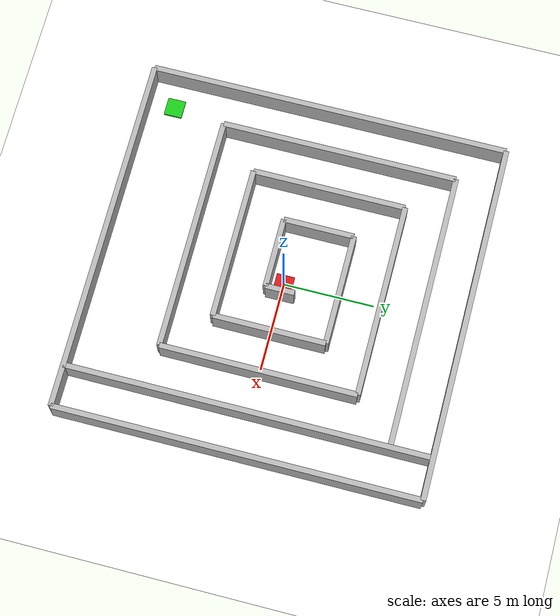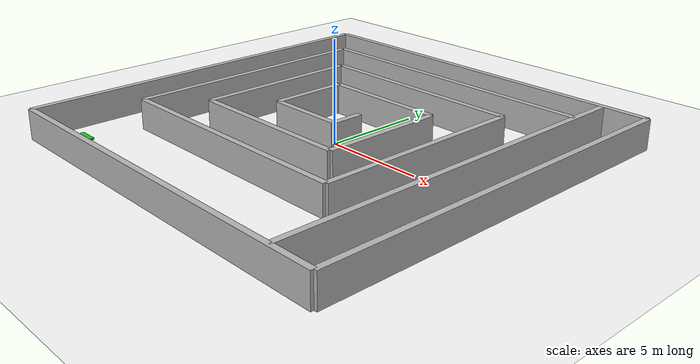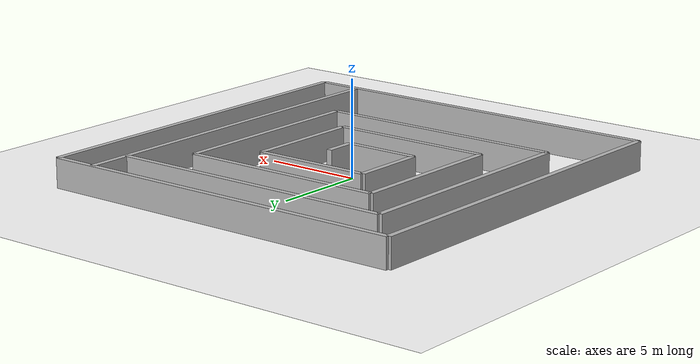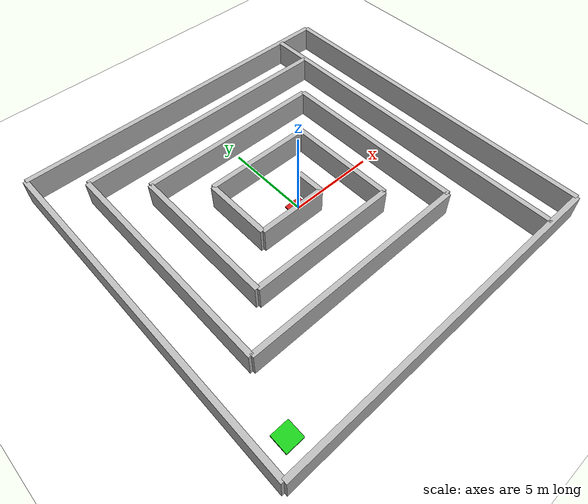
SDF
<?xml version="1.0"?>
<sdf version="1.6">
  <world name="maze_avoid">

    <light name="sun" type="directional">
      <cast_shadows>true</cast_shadows>
      <pose>0 0 10 0 0 0</pose>
      <diffuse>1 1 1 1</diffuse>
      <specular>0.1 0.1 0.1 1</specular>
      <direction>-0.5 0.5 -1</direction>
    </light>

    <!-- White ground (20x20) -->
    <model name="ground_plane">
      <static>true</static>
      <link name="link">
        <collision name="collision">
          <geometry><plane><normal>0 0 1</normal><size>20 20</size></plane></geometry>
        </collision>
        <visual name="visual">
          <geometry><plane><normal>0 0 1</normal><size>20 20</size></plane></geometry>
          <material>
            <ambient>1 1 1 1</ambient>
            <diffuse>1 1 1 1</diffuse>
            <specular>0.02 0.02 0.02 1</specular>
          </material>
        </visual>
      </link>
    </model>

    <!-- Outer boundary walls (thickness 0.3, height 1.5) -->
    <model name="boundary_n"><static>true</static><pose>0 10 0.75 0 0 0</pose><link name="l">
      <collision name="c"><geometry><box><size>20 0.3 1.5</size></box></geometry></collision>
      <visual name="v"><geometry><box><size>20 0.3 1.5</size></box></geometry></visual>
    </link></model>
    <model name="boundary_s"><static>true</static><pose>0 -10 0.75 0 0 0</pose><link name="l">
      <collision name="c"><geometry><box><size>20 0.3 1.5</size></box></geometry></collision>
      <visual name="v"><geometry><box><size>20 0.3 1.5</size></box></geometry></visual>
    </link></model>
    <model name="boundary_e"><static>true</static><pose>10 0 0.75 0 0 0</pose><link name="l">
      <collision name="c"><geometry><box><size>0.3 20 1.5</size></box></geometry></collision>
      <visual name="v"><geometry><box><size>0.3 20 1.5</size></box></geometry></visual>
    </link></model>
    <model name="boundary_w"><static>true</static><pose>-10 0 0.75 0 0 0</pose><link name="l">
      <collision name="c"><geometry><box><size>0.3 20 1.5</size></box></geometry></collision>
      <visual name="v"><geometry><box><size>0.3 20 1.5</size></box></geometry></visual>
    </link></model>

    <!-- Segment helper style: box size (Lx, Ly, Lz). Pose is center. -->

    <!-- 1) from (7.7,-7.7) up to (7.7, 7.7) -->
    <model name="spiral_01"><static>true</static><pose>7.7 0.0 0.75 0 0 0</pose><link name="l">
      <collision name="c"><geometry><box><size>0.3 20 1.5</size></box></geometry></collision>
      <visual name="v"><geometry><box><size>0.3 20 1.5</size></box></geometry></visual>
    </link></model>

    <!-- 2) from (7.7,7.7) left to (-7.7,7.7) -->
    <model name="spiral_02"><static>true</static><pose>0.0 7.7 0.75 0 0 0</pose><link name="l">
      <collision name="c"><geometry><box><size>15.4 0.3 1.5</size></box></geometry></collision>
      <visual name="v"><geometry><box><size>15.4 0.3 1.5</size></box></geometry></visual>
    </link></model>

    <!-- 3) from (-7.7,7.7) down to (-7.7,-5.4) -->
    <model name="spiral_03"><static>true</static><pose>-7.7 1.15 0.75 0 0 0</pose><link name="l">
      <collision name="c"><geometry><box><size>0.3 13.1 1.5</size></box></geometry></collision>
      <visual name="v"><geometry><box><size>0.3 13.1 1.5</size></box></geometry></visual>
    </link></model>

    <!-- 4) from (-7.7,-5.4) right to (5.4,-5.4) -->
    <model name="spiral_04"><static>true</static><pose>-1.15 -5.4 0.75 0 0 0</pose><link name="l">
      <collision name="c"><geometry><box><size>13.1 0.3 1.5</size></box></geometry></collision>
      <visual name="v"><geometry><box><size>13.1 0.3 1.5</size></box></geometry></visual>
    </link></model>

    <!-- 5) from (5.4,-5.4) up to (5.4,5.4) -->
    <model name="spiral_05"><static>true</static><pose>5.4 0.0 0.75 0 0 0</pose><link name="l">
      <collision name="c"><geometry><box><size>0.3 10.8 1.5</size></box></geometry></collision>
      <visual name="v"><geometry><box><size>0.3 10.8 1.5</size></box></geometry></visual>
    </link></model>

    <!-- 6) from (5.4,5.4) left to (-5.4,5.4) -->
    <model name="spiral_06"><static>true</static><pose>0.0 5.4 0.75 0 0 0</pose><link name="l">
      <collision name="c"><geometry><box><size>10.8 0.3 1.5</size></box></geometry></collision>
      <visual name="v"><geometry><box><size>10.8 0.3 1.5</size></box></geometry></visual>
    </link></model>

    <!-- 7) from (-5.4,5.4) down to (-5.4,-3.1) -->
    <model name="spiral_07"><static>true</static><pose>-5.4 1.15 0.75 0 0 0</pose><link name="l">
      <collision name="c"><geometry><box><size>0.3 8.5 1.5</size></box></geometry></collision>
      <visual name="v"><geometry><box><size>0.3 8.5 1.5</size></box></geometry></visual>
    </link></model>

    <!-- 8) from (-5.4,-3.1) right to (3.1,-3.1) -->
    <model name="spiral_08"><static>true</static><pose>-1.15 -3.1 0.75 0 0 0</pose><link name="l">
      <collision name="c"><geometry><box><size>8.5 0.3 1.5</size></box></geometry></collision>
      <visual name="v"><geometry><box><size>8.5 0.3 1.5</size></box></geometry></visual>
    </link></model>

    <!-- 9) from (3.1,-3.1) up to (3.1,3.1) -->
    <model name="spiral_09"><static>true</static><pose>3.1 0.0 0.75 0 0 0</pose><link name="l">
      <collision name="c"><geometry><box><size>0.3 6.2 1.5</size></box></geometry></collision>
      <visual name="v"><geometry><box><size>0.3 6.2 1.5</size></box></geometry></visual>
    </link></model>

    <!-- 10) from (3.1,3.1) left to (-3.1,3.1) -->
    <model name="spiral_10"><static>true</static><pose>0.0 3.1 0.75 0 0 0</pose><link name="l">
      <collision name="c"><geometry><box><size>6.2 0.3 1.5</size></box></geometry></collision>
      <visual name="v"><geometry><box><size>6.2 0.3 1.5</size></box></geometry></visual>
    </link></model>

    <!-- 11) from (-3.1,3.1) down to (-3.1,-0.8) -->
    <model name="spiral_11"><static>true</static><pose>-3.1 1.15 0.75 0 0 0</pose><link name="l">
      <collision name="c"><geometry><box><size>0.3 3.9 1.5</size></box></geometry></collision>
      <visual name="v"><geometry><box><size>0.3 3.9 1.5</size></box></geometry></visual>
    </link></model>

    <!-- 12) from (-3.1,-0.8) right to (0.8,-0.8) -->
    <model name="spiral_12"><static>true</static><pose>-1.15 -0.8 0.75 0 0 0</pose><link name="l">
      <collision name="c"><geometry><box><size>3.9 0.3 1.5</size></box></geometry></collision>
      <visual name="v"><geometry><box><size>3.9 0.3 1.5</size></box></geometry></visual>
    </link></model>

    <!-- 13) short inner up (creates final curl) from (0.8,-0.8) to (0.8,0.8) -->
    <model name="spiral_13"><static>true</static><pose>0.8 0.0 0.75 0 0 0</pose><link name="l">
      <collision name="c"><geometry><box><size>0.3 1.6 1.5</size></box></geometry></collision>
      <visual name="v"><geometry><box><size>0.3 1.6 1.5</size></box></geometry></visual>
    </link></model>

    <!-- Corner markers (bottom-left and top-right) -->
    <model name="start_marker"><static>true</static><pose>-8.5 -8.5 0.05 0 0 0</pose><link name="l">
      <visual name="v">
        <geometry><box><size>1 1 0.1</size></box></geometry>
        <material><ambient>0.1 0.8 0.1 1</ambient><diffuse>0.1 0.8 0.1 1</diffuse></material>
      </visual>
    </link></model>

    <model name="goal_marker"><static>true</static><pose>0 0 0 0 0 0</pose><link name="l">
      <visual name="v">
        <geometry><box><size>1 1 0.1</size></box></geometry>
        <material><ambient>0.85 0.1 0.1 1</ambient><diffuse>0.85 0.1 0.1 1</diffuse></material>
      </visual>
    </link></model>

  </world>
</sdf>
